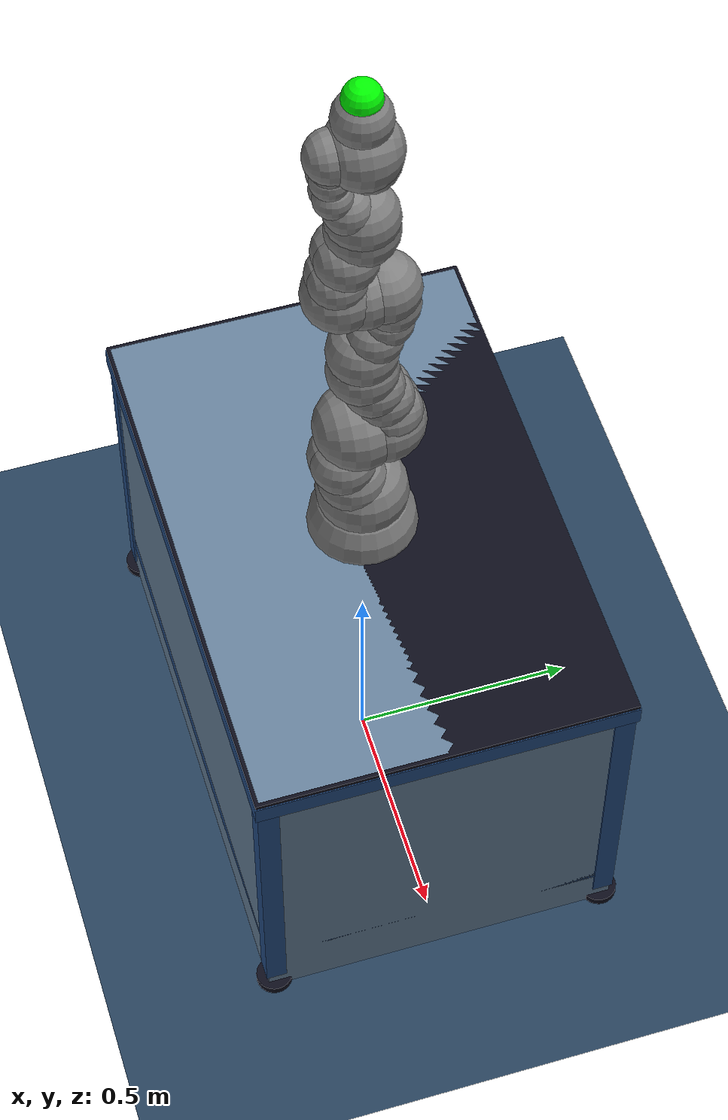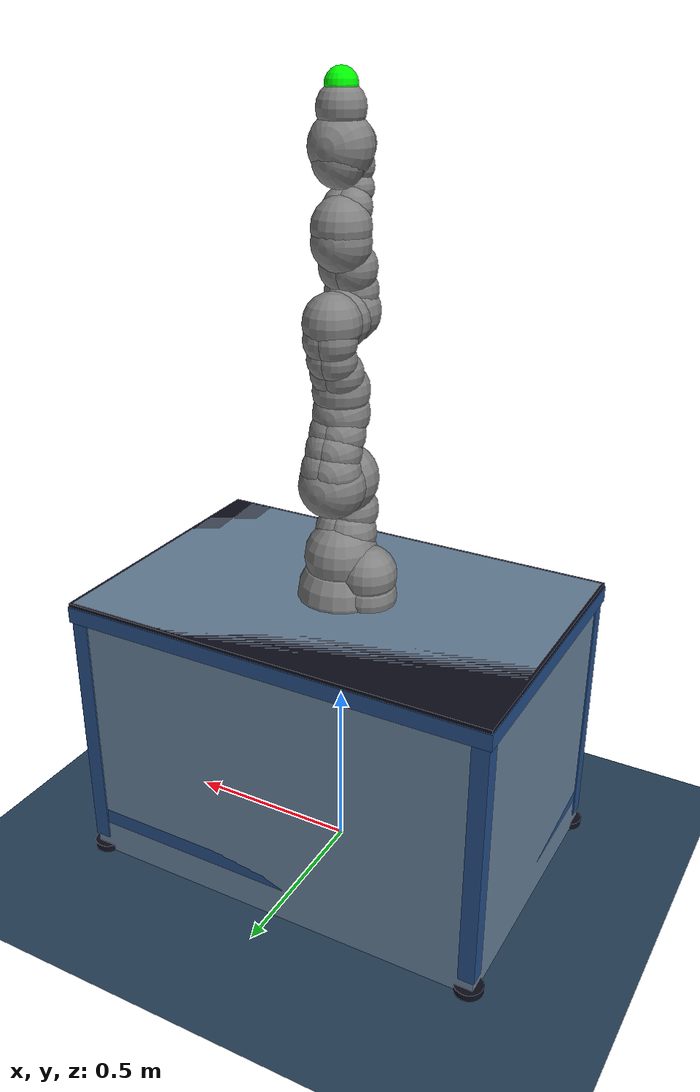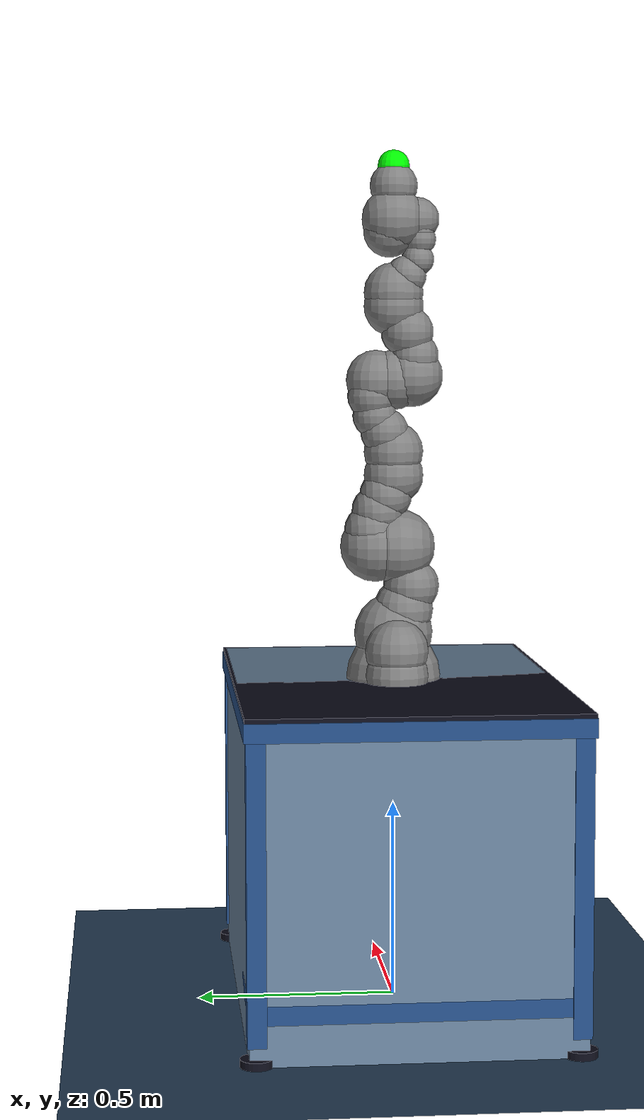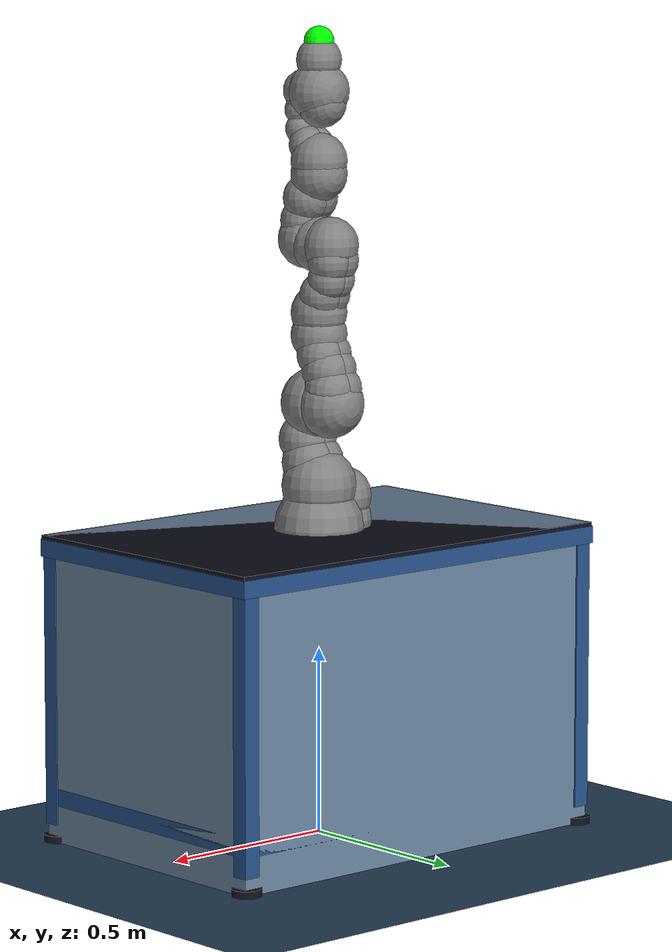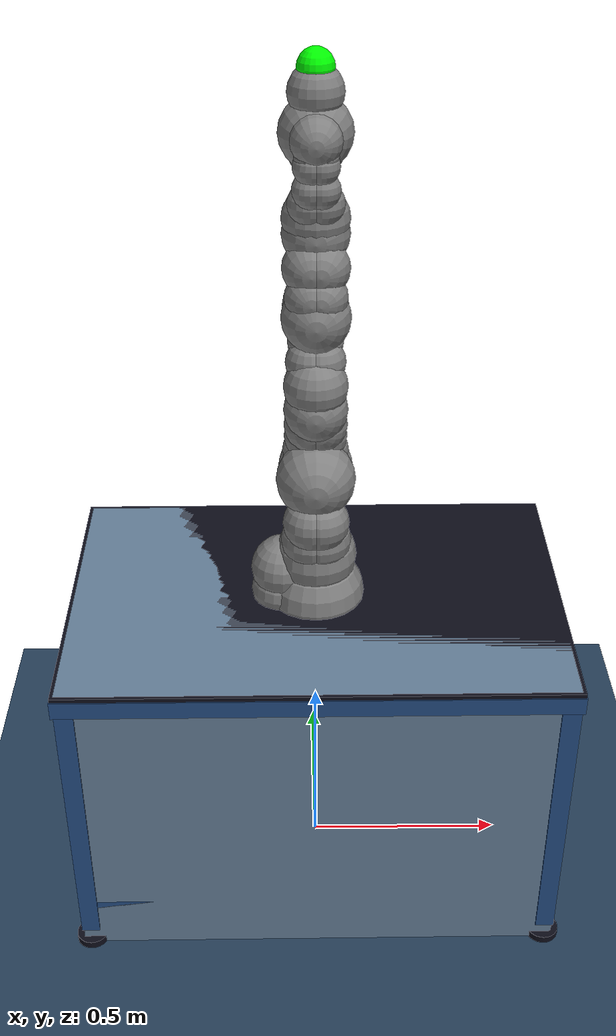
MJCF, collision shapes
<mujoco model="iiwa14 scene">
  <!-- 调整坐标系使IIWA机械臂基座位于Table工作台面上 -->
  <include file="iiwa14.xml"/>

  <statistic center="0.2 0 0.2" extent="1.0"/>

  <visual>
    <headlight diffuse="0.6 0.6 0.6" ambient="0.3 0.3 0.3" specular="0 0 0"/>
    <rgba haze="0.15 0.25 0.35 1"/>
    <global azimuth="-120" elevation="-20"/>
  </visual>

  <default>
    <include file="table_default.xml"/>
  </default>

  <asset>
    <texture type="skybox" builtin="gradient" rgb1="0.3 0.5 0.7" rgb2="0 0 0" width="512" height="3072"/>
    <texture type="2d" name="groundplane" builtin="checker" mark="edge" rgb1="0.2 0.3 0.4" rgb2="0.1 0.2 0.3"
      markrgb="0.8 0.8 0.8" width="300" height="300"/>
    <material name="groundplane" texture="groundplane" texuniform="true" texrepeat="5 5" reflectance="0.2"/>
    <include file="table_assets.xml"/>
  </asset>

  <worldbody>
    <light pos="0 0 1.5" dir="0 0 -1" directional="true"/>
    <geom name="floor" size="0 0 0.05" type="plane" material="groundplane"/>

    <!-- Table positioned at origin -->
    <include file="./table_body.xml"/>

    <!-- World reference frame at table surface level (z=0.801m) -->
    <body name="world_frame" pos="0 0 0.801">
      <geom name="X" type="cylinder" size="0.005" fromto="0 0 0 0.3 0 0" rgba="1 0 0 1" contype="0" conaffinity="0"/>
      <geom name="Y" type="cylinder" size="0.005" fromto="0 0 0 0 0.3 0" rgba="0 1 0 1" contype="0" conaffinity="0"/>
      <geom name="Z" type="cylinder" size="0.005" fromto="0 0 0 0 0 0.3" rgba="0 0 1 1" contype="0" conaffinity="0"/>
    </body>

    <!-- Target point for admittance control (above table surface) -->
  </worldbody>
</mujoco>

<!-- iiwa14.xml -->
<mujoco model="iiwa14">
  <compiler angle="radian" meshdir="assets" autolimits="true"/>

  <option integrator="implicitfast"/>

  <default>
    <default class="iiwa">
      <material specular="0.5" shininess="0.25"/>
      <joint axis="0 0 1"/>
      <general gaintype="fixed" biastype="affine" gainprm="2000" biasprm="0 -2000 -200"/>
      <default class="joint1">
        <joint range="-2.96706 2.96706"/>
        <general ctrlrange="-2.96706 2.96706"/>
        <default class="joint2">
          <joint range="-2.0944 2.0944"/>
          <general ctrlrange="-2.0944 2.0944"/>
        </default>
      </default>
      <default class="joint3">
        <joint range="-3.05433 3.05433"/>
        <general ctrlrange="-3.05433 3.05433"/>
      </default>
      <default class="visual">
        <geom type="mesh" contype="0" conaffinity="0" group="2" material="gray"/>
      </default>
      <default class="collision">
        <geom group="3"/>
      </default>
      <site size="0.001" rgba="1 0 0 1" group="4"/>
    </default>
  </default>

  <asset>
    <material class="iiwa" name="gray" rgba="0.4 0.4 0.4 1"/>
    <material class="iiwa" name="light_gray" rgba="0.6 0.6 0.6 1"/>
    <material class="iiwa" name="black" rgba="0 0 0 1"/>
    <material class="iiwa" name="orange" rgba="1 0.423529 0.0392157 1"/>

    <mesh file="link_0.obj"/>
    <mesh file="link_1.obj"/>
    <mesh file="link_2_orange.obj"/>
    <mesh file="link_2_grey.obj"/>
    <mesh file="link_3.obj"/>
    <mesh file="band.obj"/>
    <mesh file="kuka.obj"/>
    <mesh file="link_4_orange.obj"/>
    <mesh file="link_4_grey.obj"/>
    <mesh file="link_5.obj"/>
    <mesh file="link_6_orange.obj"/>
    <mesh file="link_6_grey.obj"/>
    <mesh file="link_7.obj"/>
  </asset>

  <worldbody>
    <light name="top" pos="0 0 2" mode="trackcom"/>
    <!-- IIWA robot base positioned on table surface (z=0.801m) -->
    <body name="base" childclass="iiwa" pos="0 0 0.801">
      <inertial mass="5" pos="-0.1 0 0.07" diaginertia="0.05 0.06 0.03"/>
      <geom class="visual" mesh="link_0"/>
      <geom class="collision" size="0.12" pos="0 0 0.03"/>
      <geom class="collision" size="0.08" pos="-0.08 0 0.103"/>
      <geom class="collision" size="0.08" pos="-0.08 0 0.04"/>
      <geom class="collision" size="0.1" pos="0 0 0.14"/>
      <body name="link1" pos="0 0 0.1575">
        <inertial mass="5.76" pos="0 -0.03 0.12" diaginertia="0.0333 0.033 0.0123"/>
        <joint name="joint1" class="joint1"/>
        <geom class="visual" mesh="link_1"/>
        <geom class="collision" size="0.08" pos="0 0 -0.0005"/>
        <geom class="collision" size="0.075" pos="0.01 -0.025 0.0425"/>
        <geom class="collision" size="0.075" pos="-0.01 -0.025 0.0425"/>
        <geom class="collision" size="0.07" pos="0.01 -0.045 0.1025"/>
        <geom class="collision" size="0.07" pos="-0.01 -0.045 0.1025"/>
        <body name="link2" pos="0 0 0.2025" quat="0 0 1 1">
          <inertial mass="6.35" pos="0.0003 0.059 0.042" diaginertia="0.0305 0.0304 0.011" quat="0 0 1 1"/>
          <joint name="joint2" class="joint2"/>
          <geom class="visual" material="orange" mesh="link_2_orange"/>
          <geom class="visual" mesh="link_2_grey"/>
          <geom class="collision" size="0.095" pos="0 0 -0.01"/>
          <geom class="collision" size="0.09" pos="0 0 0.045"/>
          <geom class="collision" size="0.07" pos="-0.01 0.04 0.054"/>
          <geom class="collision" size="0.065" pos="-0.01 0.09 0.04"/>
          <geom class="collision" size="0.065" pos="-0.01 0.13 0.02"/>
          <geom class="collision" size="0.07" pos="0.01 0.04 0.054"/>
          <geom class="collision" size="0.065" pos="0.01 0.09 0.04"/>
          <geom class="collision" size="0.065" pos="0.01 0.13 0.02"/>
          <geom class="collision" size="0.075" pos="0 0.18 0"/>
          <body name="link3" pos="0 0.2045 0" quat="0 0 1 1">
            <inertial mass="3.5" pos="0 0.03 0.13" diaginertia="0.025 0.0238 0.0076"/>
            <joint name="joint3" class="joint1"/>
            <geom class="visual" mesh="link_3"/>
            <geom class="visual" material="light_gray" mesh="band"/>
            <geom class="visual" material="black" mesh="kuka"/>
            <geom class="collision" size="0.075" pos="0 0 0.0355"/>
            <geom class="collision" size="0.06" pos="0.01 0.023 0.0855"/>
            <geom class="collision" size="0.055" pos="0.01 0.048 0.1255"/>
            <geom class="collision" size="0.06" pos="0.01 0.056 0.1755"/>
            <geom class="collision" size="0.06" pos="-0.01 0.023 0.0855"/>
            <geom class="collision" size="0.055" pos="-0.01 0.048 0.1255"/>
            <geom class="collision" size="0.06" pos="-0.01 0.056 0.1755"/>
            <geom class="collision" size="0.075" pos="0 0.045 0.2155"/>
            <geom class="collision" size="0.075" pos="0 0 0.2155"/>
            <body name="link4" pos="0 0 0.2155" quat="1 1 0 0">
              <inertial mass="3.5" pos="0 0.067 0.034" diaginertia="0.017 0.0164 0.006" quat="1 1 0 0"/>
              <joint name="joint4" class="joint2"/>
              <geom class="visual" material="orange" mesh="link_4_orange"/>
              <geom class="visual" mesh="link_4_grey"/>
              <geom class="collision" size="0.078" pos="0 0.01 0.046"/>
              <geom class="collision" size="0.06" pos="0.01 0.06 0.052"/>
              <geom class="collision" size="0.065" pos="0.01 0.12 0.034"/>
              <geom class="collision" size="0.06" pos="-0.01 0.06 0.052"/>
              <geom class="collision" size="0.065" pos="-0.01 0.12 0.034"/>
              <geom class="collision" size="0.075" pos="0 0.184 0"/>
              <body name="link5" pos="0 0.1845 0" quat="0 0 1 1">
                <inertial mass="3.5" pos="0.0001 0.021 0.076" diaginertia="0.01 0.0087 0.00449"/>
                <joint name="joint5" class="joint1"/>
                <geom class="visual" mesh="link_5"/>
                <geom class="visual" material="light_gray" mesh="band"/>
                <geom class="visual" material="black" mesh="kuka"/>
                <geom class="collision" size="0.075" pos="0 0 0.0335"/>
                <geom class="collision" size="0.05" pos="-0.012 0.031 0.0755"/>
                <geom class="collision" size="0.05" pos="0.012 0.031 0.0755"/>
                <geom class="collision" size="0.04" pos="-0.012 0.06 0.1155"/>
                <geom class="collision" size="0.04" pos="0.012 0.06 0.1155"/>
                <geom class="collision" size="0.04" pos="-0.01 0.065 0.1655"/>
                <geom class="collision" size="0.04" pos="0.01 0.065 0.1655"/>
                <geom class="collision" size="0.035" pos="-0.012 0.065 0.1855"/>
                <geom class="collision" size="0.035" pos="0.012 0.065 0.1855"/>
                <body name="link6" pos="0 0 0.2155" quat="1 1 0 0">
                  <inertial mass="1.8" pos="0 0.0006 0.0004" diaginertia="0.0049 0.0047 0.0036" quat="1 1 0 0"/>
                  <joint name="joint6" class="joint2"/>
                  <geom class="visual" material="orange" mesh="link_6_orange"/>
                  <geom class="visual" mesh="link_6_grey"/>
                  <geom class="collision" size="0.055" pos="0 0 -0.059"/>
                  <geom class="collision" size="0.065" pos="0 -0.03 0.011"/>
                  <geom class="collision" size="0.08"/>
                  <body name="link7" pos="0 0.081 0" quat="0 0 1 1">
                    <inertial mass="1.2" pos="0 0 0.02" diaginertia="0.001 0.001 0.001"/>
                    <joint name="joint7" class="joint3"/>
                    <geom class="visual" mesh="link_7"/>
                    <geom class="collision" size="0.06" pos="0 0 0.001"/>
                    <site pos="0 0 0.045" name="attachment_site"/>
                    <!--你需要添加的-->
                    <body name="force_sensor" pos="0 0 0.05" euler="3.14 0 3.14">
                        <geom name='force_sensor_geom' type="sphere" mass="0.0" size="0.04" rgba="0 1 0 0.3"/>
                        <site name="force_sensor_site" pos="0 0 0" quat="1 0 0 0"/>
                    </body>
                  </body>
                </body>
              </body>
            </body>
          </body>
        </body>
      </body>
    </body>
  </worldbody>

  <sensor>
    <force site="force_sensor_site"/>
  </sensor>

  <contact>
    <exclude body1="base" body2="link1"/>
    <exclude body1="base" body2="link2"/>
    <exclude body1="base" body2="link3"/>
    <exclude body1="link1" body2="link3"/>
    <exclude body1="link3" body2="link5"/>
    <exclude body1="link4" body2="link7"/>
    <exclude body1="link5" body2="link7"/>
  </contact>

  <actuator>
    <general name="actuator1" joint="joint1" class="joint1"/>
    <general name="actuator2" joint="joint2" class="joint2"/>
    <general name="actuator3" joint="joint3" class="joint1"/>
    <general name="actuator4" joint="joint4" class="joint2"/>
    <general name="actuator5" joint="joint5" class="joint1"/>
    <general name="actuator6" joint="joint6" class="joint2"/>
    <general name="actuator7" joint="joint7" class="joint3"/>
  </actuator>

  <keyframe>
    <key name="home" qpos="0 0 0 -1.5708 0 1.5708 0" ctrl="0 0 0 -1.5708 0 1.5708 0"/>
  </keyframe>
</mujoco>

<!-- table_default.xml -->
<mujoco model="table_default">
    <default class="vention">
        <geom conaffinity="0" contype="0" group="1"/>
        <default class="vention_collision">
            <geom conaffinity="1" condim="3" contype="0" group="4" margin="0.001" rgba=".4 .5 .6 1"/>
        </default>
    </default>
</mujoco>

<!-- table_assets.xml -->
<mujoco model="table_assets">
    <material name="vention_black" rgba="0.05 0.05 0.1 1" reflectance="1" shininess=".5"/>
    <material name="vention_blue" rgba=".14 .30 .52 1" reflectance="10" shininess=".1"/>
</mujoco>

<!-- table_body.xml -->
<mujoco model="table_body">
    <body name="vention_table" childclass="vention">
        <!-- leg floor pads -->
        <geom type="cylinder" size="0.040 0.010" pos="-.585 -.383 0.010" material="vention_black"/>
        <geom type="cylinder" size="0.040 0.010" pos="0.585 -.383 0.010" material="vention_black"/>
        <geom type="cylinder" size="0.040 0.010" pos="-.585 0.383 0.010" material="vention_black"/>
        <geom type="cylinder" size="0.040 0.010" pos="0.585 0.383 0.010" material="vention_black"/>

        <!-- leg pad stems -->
        <geom type="cylinder" size="0.010 0.020" pos="-.585 -.383 0.030" rgba=".5 .5 .5 1"/>
        <geom type="cylinder" size="0.010 0.020" pos="0.585 -.383 0.030" rgba=".5 .5 .5 1"/>
        <geom type="cylinder" size="0.010 0.020" pos="-.585 0.383 0.030" rgba=".5 .5 .5 1"/>
        <geom type="cylinder" size="0.010 0.020" pos="0.585 0.383 0.030" rgba=".5 .5 .5 1"/>

        <!-- legs -->
        <geom type="box" size="0.023 0.023 .387" pos="-.585 -.383 0.435" material="vention_blue"/>
        <geom type="box" size="0.023 0.023 .387" pos="0.585 -.383 0.435" material="vention_blue"/>
        <geom type="box" size="0.023 0.023 .387" pos="-.585 0.383 0.435" material="vention_blue"/>
        <geom type="box" size="0.023 0.023 .387" pos="0.585 0.383 0.435" material="vention_blue"/>

        <!-- middle legs -->
        <geom type="box" size="0.023 0.023 .337" pos="0 0.377 0.440" material="vention_blue"/>
        <geom type="box" size="0.023 0.023 .337" pos="0 -.377 0.440" material="vention_blue"/>

        <!-- top board -->
        <geom type="box" size="0.612 0.409 0.023" pos="0 0 0.801" material="vention_black"/>
        <geom type="box" size="0.614 0.411 0.023" pos="0 0 0.790" material="vention_blue"/>

        <!-- bottom board -->
        <geom type="box" size="0.602 0.399 0.005" pos="0 0 0.150" material="vention_black"/>
        <geom type="box" size="0.604 0.401 0.023" pos="0 0 0.124" material="vention_blue"/>

        <!-- collision -->
        <geom type="box" size="0.604 0.401 0.411" pos="0 0 0.413" class="vention_collision"/>
    </body>
</mujoco>
